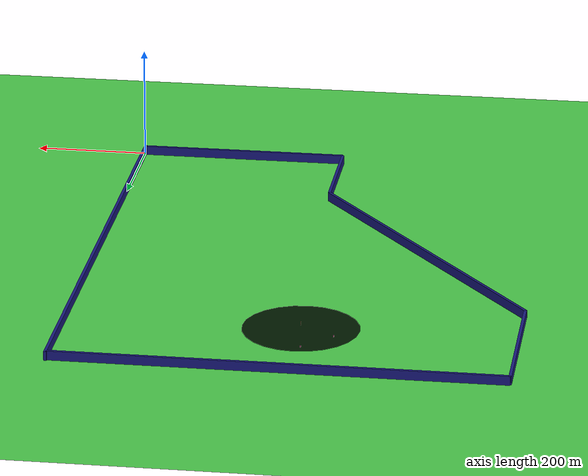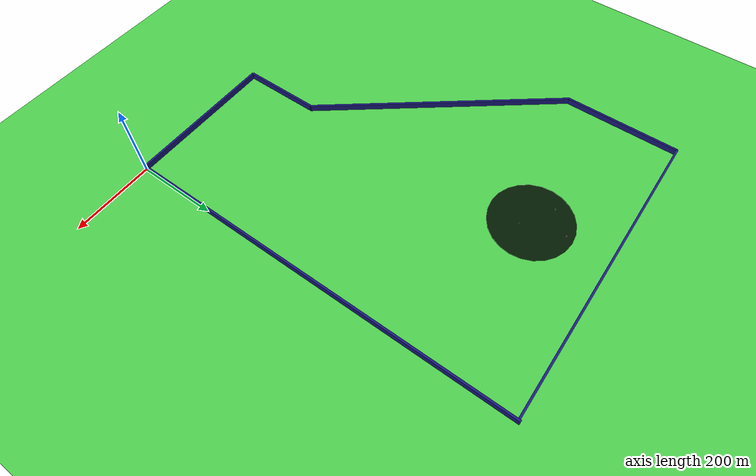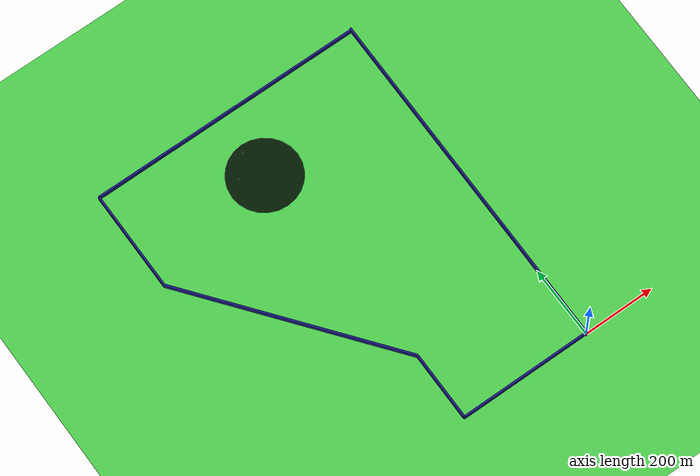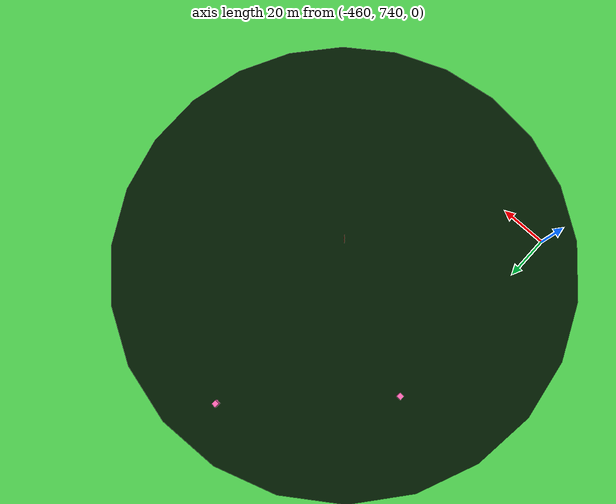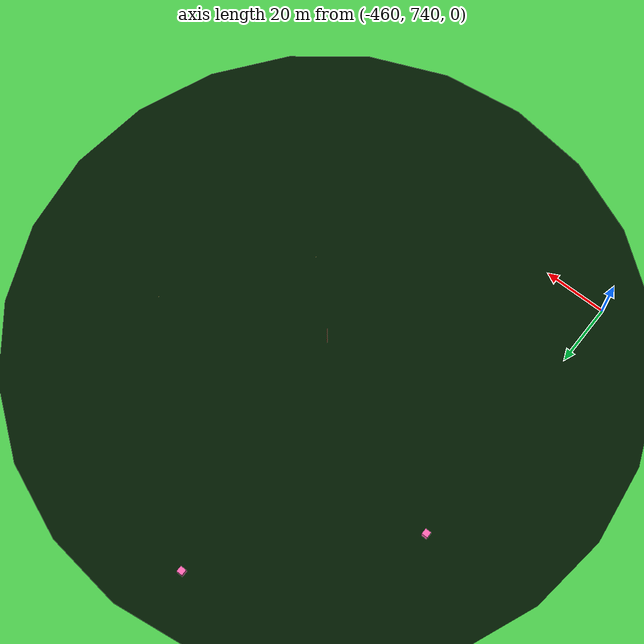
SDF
<?xml version="1.0" encoding="UTF-8"?>
<sdf version="1.9">
  <world name="walls">
    <physics type="ode">
      <max_step_size>0.004</max_step_size>
      <real_time_factor>1.0</real_time_factor>
      <real_time_update_rate>250</real_time_update_rate>
    </physics>
    <plugin name="gz::sim::systems::Physics" filename="gz-sim-physics-system"/>
    <plugin name="gz::sim::systems::UserCommands" filename="gz-sim-user-commands-system"/>
    <plugin name="gz::sim::systems::SceneBroadcaster" filename="gz-sim-scene-broadcaster-system"/>
    <plugin name="gz::sim::systems::Contact" filename="gz-sim-contact-system"/>
    <plugin name="gz::sim::systems::Imu" filename="gz-sim-imu-system"/>
    <plugin name="gz::sim::systems::AirPressure" filename="gz-sim-air-pressure-system"/>
    <plugin name="gz::sim::systems::ApplyLinkWrench" filename="gz-sim-apply-link-wrench-system"/>
    <plugin name="gz::sim::systems::NavSat" filename="gz-sim-navsat-system"/>
    <plugin name="gz::sim::systems::Sensors" filename="gz-sim-sensors-system">
      <render_engine>ogre2</render_engine>
    </plugin>
    <gui fullscreen="false">
      <!-- 3D scene -->
      <plugin filename="MinimalScene" name="3D View">
        <gz-gui>
          <title>3D View</title>
          <property type="bool" key="showTitleBar">false</property>
          <property type="string" key="state">docked</property>
        </gz-gui>
        <engine>ogre2</engine>
        <scene>scene</scene>
        <ambient_light>0.4 0.4 0.4</ambient_light>
        <background_color>0.8 0.8 0.8</background_color>
        <camera_pose>-6 0 6 0 0.5 0</camera_pose>
        <camera_clip>
          <near>0.25</near>
          <far>25000</far>
        </camera_clip>
      </plugin>
      <!-- Plugins that add functionality to the scene -->
      <plugin filename="EntityContextMenuPlugin" name="Entity context menu">
        <gz-gui>
          <property key="state" type="string">floating</property>
          <property key="width" type="double">5</property>
          <property key="height" type="double">5</property>
          <property key="showTitleBar" type="bool">false</property>
        </gz-gui>
      </plugin>
      <plugin filename="GzSceneManager" name="Scene Manager">
        <gz-gui>
          <property key="resizable" type="bool">false</property>
          <property key="width" type="double">5</property>
          <property key="height" type="double">5</property>
          <property key="state" type="string">floating</property>
          <property key="showTitleBar" type="bool">false</property>
        </gz-gui>
      </plugin>
      <plugin filename="InteractiveViewControl" name="Interactive view control">
        <gz-gui>
          <property key="resizable" type="bool">false</property>
          <property key="width" type="double">5</property>
          <property key="height" type="double">5</property>
          <property key="state" type="string">floating</property>
          <property key="showTitleBar" type="bool">false</property>
        </gz-gui>
      </plugin>
      <plugin filename="CameraTracking" name="Camera Tracking">
        <gz-gui>
          <property key="resizable" type="bool">false</property>
          <property key="width" type="double">5</property>
          <property key="height" type="double">5</property>
          <property key="state" type="string">floating</property>
          <property key="showTitleBar" type="bool">false</property>
        </gz-gui>
      </plugin>
      <plugin filename="MarkerManager" name="Marker manager">
        <gz-gui>
          <property key="resizable" type="bool">false</property>
          <property key="width" type="double">5</property>
          <property key="height" type="double">5</property>
          <property key="state" type="string">floating</property>
          <property key="showTitleBar" type="bool">false</property>
        </gz-gui>
      </plugin>
      <plugin filename="SelectEntities" name="Select Entities">
        <gz-gui>
          <anchors target="Select entities">
            <line own="right" target="right"/>
            <line own="top" target="top"/>
          </anchors>
          <property key="resizable" type="bool">false</property>
          <property key="width" type="double">5</property>
          <property key="height" type="double">5</property>
          <property key="state" type="string">floating</property>
          <property key="showTitleBar" type="bool">false</property>
        </gz-gui>
      </plugin>
      <plugin filename="VisualizationCapabilities" name="Visualization Capabilities">
        <gz-gui>
          <property key="resizable" type="bool">false</property>
          <property key="width" type="double">5</property>
          <property key="height" type="double">5</property>
          <property key="state" type="string">floating</property>
          <property key="showTitleBar" type="bool">false</property>
        </gz-gui>
      </plugin>
      <plugin filename="Spawn" name="Spawn Entities">
        <gz-gui>
          <anchors target="Select entities">
            <line own="right" target="right"/>
            <line own="top" target="top"/>
          </anchors>
          <property key="resizable" type="bool">false</property>
          <property key="width" type="double">5</property>
          <property key="height" type="double">5</property>
          <property key="state" type="string">floating</property>
          <property key="showTitleBar" type="bool">false</property>
        </gz-gui>
      </plugin>
      <plugin name="World control" filename="WorldControl">
        <gz-gui>
          <title>World control</title>
          <property type="bool" key="showTitleBar">0</property>
          <property type="bool" key="resizable">0</property>
          <property type="double" key="height">72</property>
          <property type="double" key="width">121</property>
          <property type="double" key="z">1</property>
          <property type="string" key="state">floating</property>
          <anchors target="3D View">
            <line own="left" target="left"/>
            <line own="bottom" target="bottom"/>
          </anchors>
        </gz-gui>
        <play_pause>1</play_pause>
        <step>1</step>
        <start_paused>1</start_paused>
      </plugin>
      <plugin name="World stats" filename="WorldStats">
        <gz-gui>
          <title>World stats</title>
          <property type="bool" key="showTitleBar">0</property>
          <property type="bool" key="resizable">0</property>
          <property type="double" key="height">110</property>
          <property type="double" key="width">290</property>
          <property type="double" key="z">1</property>
          <property type="string" key="state">floating</property>
          <anchors target="3D View">
            <line own="right" target="right"/>
            <line own="bottom" target="bottom"/>
          </anchors>
        </gz-gui>
        <sim_time>1</sim_time>
        <real_time>1</real_time>
        <real_time_factor>1</real_time_factor>
        <iterations>1</iterations>
      </plugin>
      <plugin name="Entity tree" filename="EntityTree"/>
    </gui>
    <gravity>0 0 -9.8</gravity>
    <magnetic_field>6e-06 2.3e-05 -4.2e-05</magnetic_field>
    <atmosphere type="adiabatic"/>
    <scene>
      <grid>false</grid>
      <ambient>0.4 0.4 0.4 1</ambient>
      <background>0.7 0.7 0.7 1</background>
      <shadows>true</shadows>
    </scene>
    <model name="ground_plane">
      <static>true</static>
      <link name="link">
        <inertial>
          <inertia>
            <ixx>0.16666</ixx>
            <ixy>0</ixy>
            <ixz>0</ixz>
            <iyy>0.16666</iyy>
            <iyz>0</iyz>
            <izz>0.16666</izz>
          </inertia>
          <mass>10</mass>
          <pose>0 0 0 0 0 0</pose>
        </inertial>
        <collision name="collision">
          <geometry>
            <plane>
              <normal>0 0 1</normal>
              <size>2000 2000</size><!--2000x2000 plane-->
            </plane>
          </geometry>
          <surface>
            <friction>
              <ode/>
            </friction>
            <bounce/>
            <contact/>
          </surface>
        </collision>
        <visual name="visual">
          <geometry>
            <plane>
              <normal>0 0 1</normal>
              <size>2000 2000</size>
            </plane>
          </geometry>
          <material><!--Green-->
            <ambient>0.2 0.6 0.2 1</ambient>
            <diffuse>0.3 0.8 0.3 1</diffuse>
            <specular>0.1 0.2 0.1 1</specular>
          </material>
        </visual>
        <pose>0 0 0 0 -0 0</pose>
        <inertial>
          <pose>0 0 0 0 -0 0</pose>
          <mass>1</mass>
          <inertia>
            <ixx>1</ixx>
            <ixy>0</ixy>
            <ixz>0</ixz>
            <iyy>1</iyy>
            <iyz>0</iyz>
            <izz>1</izz>
          </inertia>
        </inertial>
        <enable_wind>false</enable_wind>
      </link>
      <pose>0 0 0 0 -0 0</pose>
      <self_collide>false</self_collide>
    </model>
    <!--Walls are soft boundary-->
    <model name="bottomHorWall"><!--Bottom Horizontal Wall-->
      <pose>-185 0 0 0 0 0</pose>
      <static>true</static>
      <link name="link1">
      <collision name="collision">
        <geometry>
          <box>
            <size>370 5 30</size>
          </box>
        </geometry>
      </collision>
      <visual name="visual">
        <geometry>
          <box>
            <size>370 5 30</size>
          </box>
        </geometry>
        <material>
          <ambient>0.1 0.1 0.5 1</ambient><!--Dark Blue-->
          <diffuse>0.1 0.1 0.5 1</diffuse>
          <specular>0.2 0.2 0.5 1</specular>
        </material>
      </visual>
      </link>
    </model>
    <model name="rightVerWall">
      <static>true</static>
      <pose>0 494 0 0 0 0</pose>
      <link name="link2">
      <collision name="collision">
        <geometry>
          <box>
            <size>5 998 30</size>
          </box>
        </geometry>
      </collision>
      <visual name="visual">
        <geometry>
          <box>
            <size>5 998 30</size>
          </box>
        </geometry>
        <material>
          <ambient>0.1 0.1 0.5 1</ambient>
          <diffuse>0.1 0.1 0.5 1</diffuse>
          <specular>0.2 0.2 0.5 1</specular>
        </material>
      </visual>
      </link>
    </model>
    <model name="topHorWall">
      <static>true</static>
      <pose>-385 988 0 0 0 0</pose>
      <link name="link3">
      <collision name="collision">
        <geometry>
          <box>
            <size>769 5 30</size>
          </box>
        </geometry>
      </collision>
      <visual name="visual">
        <geometry>
          <box>
            <size>769 5 30</size>
          </box>
        </geometry>
        <material>
          <ambient>0.1 0.1 0.5 1</ambient>
          <diffuse>0.1 0.1 0.5 1</diffuse>
          <specular>0.2 0.2 0.5 1</specular>
        </material>
      </visual>
      </link>
    </model>
    <model name="leftVerWall">
      <pose>-769 847 0 0 0 0</pose>
      <static>true</static>
      <link name="link4">
      <collision name="collision">
        <geometry>
          <box>
            <size>5 282 30</size>
          </box>
        </geometry>
      </collision>
      <visual name="visual">
        <geometry>
          <box>
            <size>5 282 30</size>
          </box>
        </geometry>
        <material>
          <ambient>0.1 0.1 0.5 1</ambient>
          <diffuse>0.1 0.1 0.5 1</diffuse>
          <specular>0.2 0.2 0.5 1</specular>
        </material>
      </visual>
      </link>
    </model>
    <model name="midVerWall">
      <pose>-370 97 0 0 0 0</pose>
      <static>true</static>
      <link name="link5">
      <collision name="collision">
        <geometry>
          <box>
            <size>5 193 30</size>
          </box>
        </geometry>
      </collision>
      <visual name="visual">
        <geometry>
          <box>
            <size>5 193 30</size>
          </box>
        </geometry>
        <material>
          <ambient>0.1 0.1 0.5 1</ambient>
          <diffuse>0.1 0.1 0.5 1</diffuse>
          <specular>0.2 0.2 0.5 1</specular>
        </material>
      </visual>
      </link>
    </model>
    <model name="diagWall"><!--diagonal wall-->
      <pose>-570 450 0 0 0 0.663</pose><!--Rotate 52 degrees = 0.9098 rad-->
      <static>true</static>
      <link name="link6">
      <collision name="collision">
        <geometry>
          <box>
            <size>5 650 30</size>
          </box>
        </geometry>
      </collision>
      <visual name="visual">
        <geometry>
          <box>
            <size>5 650 30</size>
          </box>
        </geometry>
        <material>
          <ambient>0.1 0.1 0.5 1</ambient>
          <diffuse>0.1 0.1 0.5 1</diffuse>
          <specular>0.2 0.2 0.5 1</specular>
        </material>
      </visual>
      </link>
    </model>
    <model name="balloon1">
      <pose>-400 800 1.15 0 0 0</pose>
      <static>true</static>
      <link name="link7">
      <collision name="collision">
        <geometry>
          <sphere>
            <radius>0.15</radius>
          </sphere>
        </geometry>
      </collision>
      <visual name="visual">
        <geometry>
          <sphere>
            <radius>0.15</radius>
          </sphere>
        </geometry>
        <material>
          <ambient>1.0 0.0 0.0 1.0</ambient> <!-- Red -->
        <diffuse>1.0 0.0 0.0 1.0</diffuse>
        <specular>0.5 0.5 0.5 1.0</specular>
        </material>
      </visual>
      </link>
    </model>
    <model name="balloon2">
      <pose>-400 800 2.45 0 0 0</pose>
      <static>true</static>
      <link name="link8">
      <collision name="collision">
        <geometry>
          <sphere>
            <radius>0.15</radius>
          </sphere>
        </geometry>
      </collision>
      <visual name="visual">
        <geometry>
          <sphere>
            <radius>0.15</radius>
          </sphere>
        </geometry>
        <material>
          <ambient>1.0 0.0 0.0 1.0</ambient>
        <diffuse>1.0 0.0 0.0 1.0</diffuse>
        <specular>0.5 0.5 0.5 1.0</specular>
        </material>
      </visual>
      </link>
    </model>
    <model name="balloon3">
      <pose>-400 800 3.75 0 0 0</pose>
      <static>true</static>
      <link name="link9">
      <collision name="collision">
        <geometry>
          <sphere>
            <radius>0.15</radius>
          </sphere>
        </geometry>
      </collision>
      <visual name="visual">
        <geometry>
          <sphere>
            <radius>0.15</radius>
          </sphere>
        </geometry>
        <material>
          <ambient>1.0 0.0 0.0 1.0</ambient>
        <diffuse>1.0 0.0 0.0 1.0</diffuse>
        <specular>0.5 0.5 0.5 1.0</specular>
        </material>
      </visual>
      </link>
    </model>
    <model name="balloon4">
      <pose>-400 800 5.05 0 0 0</pose>
      <static>true</static>
      <link name="link10">
      <collision name="collision">
        <geometry>
          <sphere>
            <radius>0.15</radius>
          </sphere>
        </geometry>
      </collision>
      <visual name="visual">
        <geometry>
          <sphere>
            <radius>0.15</radius>
          </sphere>
        </geometry>
        <material>
          <ambient>1.0 0.0 0.0 1.0</ambient>
        <diffuse>1.0 0.0 0.0 1.0</diffuse>
        <specular>0.5 0.5 0.5 1.0</specular>
        </material>
      </visual>
      </link>
    </model>
    <model name="balloon5">
      <pose>-400 800 6.35 0 0 0</pose>
      <static>true</static>
      <link name="link11">
      <collision name="collision">
        <geometry>
          <sphere>
            <radius>0.15</radius>
          </sphere>
        </geometry>
      </collision>
      <visual name="visual">
        <geometry>
          <sphere>
            <radius>0.15</radius>
          </sphere>
        </geometry>
        <material>
          <ambient>1.0 0.0 0.0 1.0</ambient>
        <diffuse>1.0 0.0 0.0 1.0</diffuse>
        <specular>0.5 0.5 0.5 1.0</specular>
        </material>
      </visual>
      </link>
    </model>
    <model name="balloon6">
      <pose>-400 800 7.65 0 0 0</pose>
      <static>true</static>
      <link name="link12">
      <collision name="collision">
        <geometry>
          <sphere>
            <radius>0.15</radius>
          </sphere>
        </geometry>
      </collision>
      <visual name="visual">
        <geometry>
          <sphere>
            <radius>0.15</radius>
          </sphere>
        </geometry>
        <material>
          <ambient>1.0 0.0 0.0 1.0</ambient>
        <diffuse>1.0 0.0 0.0 1.0</diffuse>
        <specular>0.5 0.5 0.5 1.0</specular>
        </material>
      </visual>
      </link>
    </model>
    <model name="balloon7">
      <pose>-400 800 8.95 0 0 0</pose>
      <static>true</static>
      <link name="link13">
      <collision name="collision">
        <geometry>
          <sphere>
            <radius>0.15</radius>
          </sphere>
        </geometry>
      </collision>
      <visual name="visual">
        <geometry>
          <sphere>
            <radius>0.15</radius>
          </sphere>
        </geometry>
        <material>
          <ambient>1.0 0.0 0.0 1.0</ambient>
        <diffuse>1.0 0.0 0.0 1.0</diffuse>
        <specular>0.5 0.5 0.5 1.0</specular>
        </material>
      </visual>
      </link>
    </model>
    <model name="balloon8">
      <pose>-400 800 10.25 0 0 0</pose>
      <static>true</static>
      <link name="link14">
      <collision name="collision">
        <geometry>
          <sphere>
            <radius>0.15</radius>
          </sphere>
        </geometry>
      </collision>
      <visual name="visual">
        <geometry>
          <sphere>
            <radius>0.15</radius>
          </sphere>
        </geometry>
        <material>
          <ambient>1.0 0.0 0.0 1.0</ambient>
        <diffuse>1.0 0.0 0.0 1.0</diffuse>
        <specular>0.5 0.5 0.5 1.0</specular>
        </material>
      </visual>
      </link>
    </model>
    <model name="balloon9">
      <pose>-400 800 11.55 0 0 0</pose>
      <static>true</static>
      <link name="link15">
      <collision name="collision">
        <geometry>
          <sphere>
            <radius>0.15</radius>
          </sphere>
        </geometry>
      </collision>
      <visual name="visual">
        <geometry>
          <sphere>
            <radius>0.15</radius>
          </sphere>
        </geometry>
        <material>
          <ambient>1.0 0.0 0.0 1.0</ambient>
        <diffuse>1.0 0.0 0.0 1.0</diffuse>
        <specular>0.5 0.5 0.5 1.0</specular>
        </material>
      </visual>
      </link>
    </model>
    <model name="balloon10">
      <pose>-400 800 12.85 0 0 0</pose>
      <static>true</static>
      <link name="link16">
      <collision name="collision">
        <geometry>
          <sphere>
            <radius>0.15</radius>
          </sphere>
        </geometry>
      </collision>
      <visual name="visual">
        <geometry>
          <sphere>
            <radius>0.15</radius>
          </sphere>
        </geometry>
        <material>
          <ambient>1.0 0.0 0.0 1.0</ambient>
        <diffuse>1.0 0.0 0.0 1.0</diffuse>
        <specular>0.5 0.5 0.5 1.0</specular>
        </material>
      </visual>
      </link>
    </model>
    <model name="circle"><!--100m radius around balloons-->
      <pose>-400 800 0 0 0 0</pose>
      <static>true</static>
      <link name="link17">
      <collision name="collision">
        <geometry>
          <cylinder>
          <radius>100</radius>
            <length>0.1</length>
          </cylinder>
        </geometry>
      </collision>
      <visual name="visual">
        <geometry>
          <cylinder>
          <radius>100</radius>
            <length>0.1</length>
          </cylinder>
        </geometry>
        <material>
          <ambient>0.0 0.1 0.0 1</ambient><!--Dark green-->
          <diffuse>0.0 0.1 0.0 1</diffuse>
          <specular>0.05 0.1 0.05 1</specular>
        </material>
      </visual>
      </link>
    </model>
    <model name="IREmitter1">
      <thermal>
        <temperature>3081</temperature>
      </thermal>
      <!--Change the first three numbers (x,y,z) to change position-->
      <pose>-350 820 0.70 0 0 0</pose>
      <static>true</static>
      <link name="link18">
      <collision name="collision">
        <geometry>
          <box>
            <size>0.1 0.1 0.1</size>
          </box>
        </geometry>
      </collision>
      <visual name="visual">
        <geometry>
          <box>
            <size>0.1 0.1 0.1</size>
          </box>
        </geometry>
        <material>
          <ambient>1.0 0.5 0.0 1</ambient><!--Orange-Yellow-->
          <diffuse>1.0 0.5 0.0 1</diffuse>
          <specular>0.8 0.4 0.1 1</specular>
        </material>
      </visual>
      </link>
    </model>
    <model name="IREmitter2">
      <thermal>
        <temperature>3081</temperature>
      </thermal>
      <pose>-420 750 0.53 0 0 0</pose>
      <static>true</static>
      <link name="link19">
      <collision name="collision">
        <geometry>
          <box>
            <size>0.1 0.1 0.1</size>
          </box>
        </geometry>
      </collision>
      <visual name="visual">
        <geometry>
          <box>
            <size>0.1 0.1 0.1</size>
          </box>
        </geometry>
        <material>
          <ambient>1.0 0.5 0.0 1</ambient>
          <diffuse>1.0 0.5 0.0 1</diffuse>
          <specular>0.8 0.4 0.1 1</specular>
        </material>
      </visual>
      </link>
    </model>
    <model name="IREmitter3">
      <thermal>
        <temperature>3081</temperature>
      </thermal>
      <pose>-380 780 0.84 0 0 0</pose>
      <static>true</static>
      <link name="link20">
      <collision name="collision">
        <geometry>
          <box>
            <size>0.1 0.1 0.1</size>
          </box>
        </geometry>
      </collision>
      <visual name="visual">
        <geometry>
          <box>
            <size>0.1 0.1 0.1</size>
          </box>
        </geometry>
        <material>
          <ambient>1.0 0.5 0.0 1</ambient>
          <diffuse>1.0 0.5 0.0 1</diffuse>
          <specular>0.8 0.4 0.1 1</specular>
        </material>
      </visual>
      </link>
    </model>
    <model name="IREmitter4">
      <thermal>
        <temperature>3081</temperature>
      </thermal>
      <pose>-460 830 0.99 0 0 0</pose>
      <static>true</static>
      <link name="link21">
      <collision name="collision">
        <geometry>
          <box>
            <size>0.1 0.1 0.1</size>
          </box>
        </geometry>
      </collision>
      <visual name="visual">
        <geometry>
          <box>
            <size>0.1 0.1 0.1</size>
          </box>
        </geometry>
        <material>
          <ambient>1.0 0.5 0.0 1</ambient>
          <diffuse>1.0 0.5 0.0 1</diffuse>
          <specular>0.8 0.4 0.1 1</specular>
        </material>
      </visual>
      </link>
    </model>
    <model name="IREmitter5">
      <thermal>
        <temperature>3081</temperature>
      </thermal>
      <pose>-410 880 1.47 0 0 0</pose>
      <static>true</static>
      <link name="link22">
      <collision name="collision">
        <geometry>
          <box>
            <size>0.1 0.1 0.1</size>
          </box>
        </geometry>
      </collision>
      <visual name="visual">
        <geometry>
          <box>
            <size>0.1 0.1 0.1</size>
          </box>
        </geometry>
        <material>
          <ambient>1.0 0.5 0.0 1</ambient>
          <diffuse>1.0 0.5 0.0 1</diffuse>
          <specular>0.8 0.4 0.1 1</specular>
        </material>
      </visual>
      </link>
    </model>
    <model name="Obstacle1"><!--Blocks IREmitter5-->
      <pose>-410 881 0 0 0 0</pose>
      <static>true</static>
      <link name="link23">
      <collision name="collision">
        <geometry>
          <box>
            <size>1 1 3</size>
          </box>
        </geometry>
      </collision>
      <visual name="visual">
        <geometry>
          <box>
            <size>2 2 5</size>
          </box>
        </geometry>
        <material>
          <ambient>1.0 0.4 0.7 1</ambient><!--Pink-->
          <diffuse>1.0 0.4 0.7 1</diffuse>
          <specular>0.8 0.3 0.6 1</specular>
        </material>
      </visual>
      </link>
    </model>
    <model name="Obstacle2"><!--Blocks IREmitter4-->
      <pose>-459 829 0 0 0 0</pose>
      <static>true</static>
      <link name="link24">
      <collision name="collision">
        <geometry>
          <box>
            <size>1 1 3</size>
          </box>
        </geometry>
      </collision>
      <visual name="visual">
        <geometry>
          <box>
            <size>2 2 5</size>
          </box>
        </geometry>
        <material>
          <ambient>1.0 0.4 0.7 1</ambient>
          <diffuse>1.0 0.4 0.7 1</diffuse>
          <specular>0.8 0.3 0.6 1</specular>
        </material>
      </visual>
      </link>
    </model>
    <light name="sunUTC" type="directional">
      <pose>0 0 500 0 -0 0</pose>
      <cast_shadows>true</cast_shadows>
      <intensity>1</intensity>
      <direction>0.001 0.625 -0.78</direction>
      <diffuse>0.904 0.904 0.904 1</diffuse>
      <specular>0.271 0.271 0.271 1</specular>
      <attenuation>
        <range>2000</range>
        <linear>0</linear>
        <constant>1</constant>
        <quadratic>0</quadratic>
      </attenuation>
      <spot>
        <inner_angle>0</inner_angle>
        <outer_angle>0</outer_angle>
        <falloff>0</falloff>
      </spot>
    </light>
    <spherical_coordinates>
      <surface_model>EARTH_WGS84</surface_model>
      <world_frame_orientation>ENU</world_frame_orientation>
      <latitude_deg>50.097341</latitude_deg>
      <longitude_deg>-110.735232</longitude_deg>
      <elevation>0</elevation>
    </spherical_coordinates>
  </world>
</sdf>
